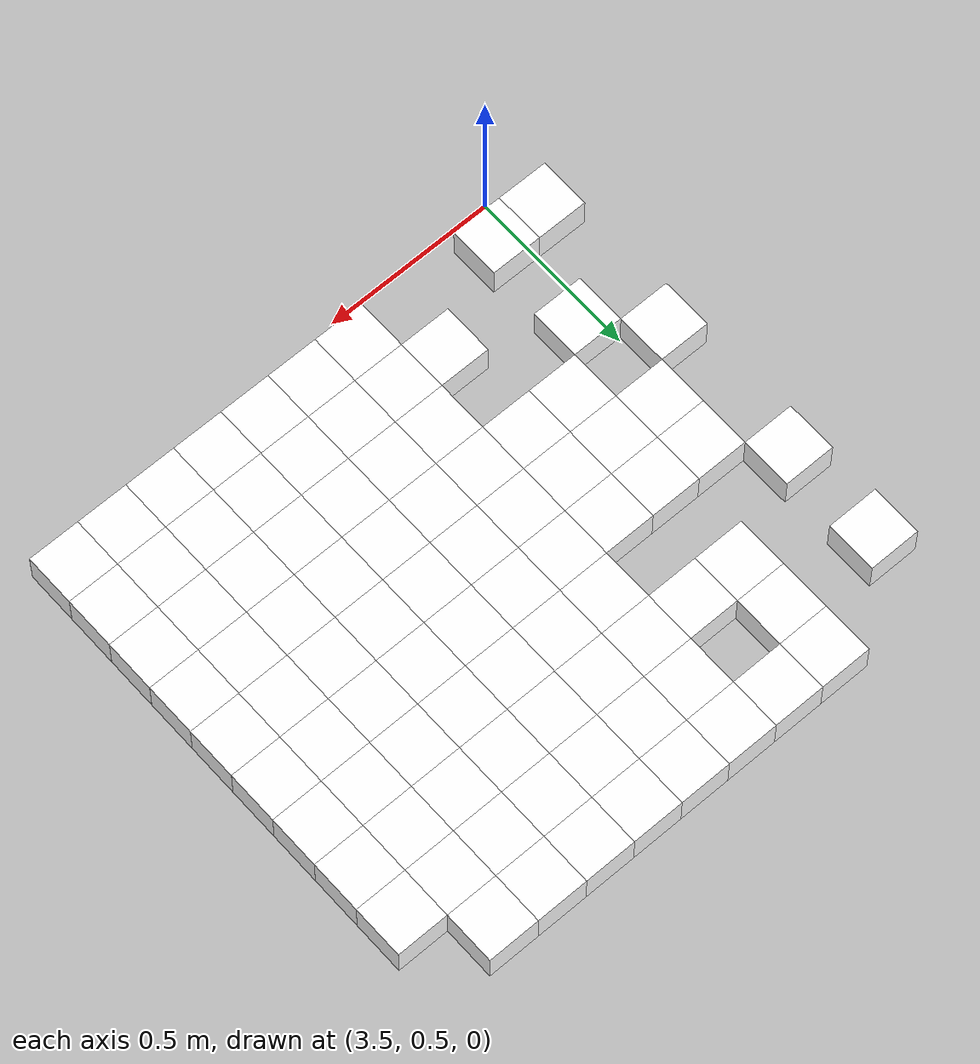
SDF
<sdf version="1.7">
 <world name="default">
  <include><uri>model://sun</uri></include>
  <model name="static_environment">
   <static>true</static>
   <link name="region_407">
    <pose>3.400000000000003 0.6 0.0 0.0 0.0 0.0</pose>
    <collision name="region_407_collision">
     <geometry><box><size>0.15 0.15 0.1</size></box></geometry>
     <surface><friction><ode><mu>1.0</mu><mu2>1.0</mu2></ode></friction></surface>
    </collision>
    <visual name="region_407_visual">
     <geometry><box><size>0.15 0.15 0.1</size></box></geometry>
     <material><ambient>1.0 1.0 1.0 1.0</ambient><diffuse>1.0 1.0 1.0 1.0</diffuse></material>
    </visual>
   </link>
   <link name="region_408">
    <pose>3.5500000000000034 0.6 0.0 0.0 0.0 0.0</pose>
    <collision name="region_408_collision">
     <geometry><box><size>0.15 0.15 0.1</size></box></geometry>
     <surface><friction><ode><mu>1.0</mu><mu2>1.0</mu2></ode></friction></surface>
    </collision>
    <visual name="region_408_visual">
     <geometry><box><size>0.15 0.15 0.1</size></box></geometry>
     <material><ambient>1.0 1.0 1.0 1.0</ambient><diffuse>1.0 1.0 1.0 1.0</diffuse></material>
    </visual>
   </link>
   <link name="region_414">
    <pose>3.850000000000004 0.75 0.0 0.0 0.0 0.0</pose>
    <collision name="region_414_collision">
     <geometry><box><size>0.15 0.15 0.1</size></box></geometry>
     <surface><friction><ode><mu>1.0</mu><mu2>1.0</mu2></ode></friction></surface>
    </collision>
    <visual name="region_414_visual">
     <geometry><box><size>0.15 0.15 0.1</size></box></geometry>
     <material><ambient>1.0 1.0 1.0 1.0</ambient><diffuse>1.0 1.0 1.0 1.0</diffuse></material>
    </visual>
   </link>
   <link name="region_421">
    <pose>3.5500000000000034 0.8999999999999999 0.0 0.0 0.0 0.0</pose>
    <collision name="region_421_collision">
     <geometry><box><size>0.15 0.15 0.1</size></box></geometry>
     <surface><friction><ode><mu>1.0</mu><mu2>1.0</mu2></ode></friction></surface>
    </collision>
    <visual name="region_421_visual">
     <geometry><box><size>0.15 0.15 0.1</size></box></geometry>
     <material><ambient>1.0 1.0 1.0 1.0</ambient><diffuse>1.0 1.0 1.0 1.0</diffuse></material>
    </visual>
   </link>
   <link name="region_426">
    <pose>3.400000000000003 1.0499999999999998 0.0 0.0 0.0 0.0</pose>
    <collision name="region_426_collision">
     <geometry><box><size>0.15 0.15 0.1</size></box></geometry>
     <surface><friction><ode><mu>1.0</mu><mu2>1.0</mu2></ode></friction></surface>
    </collision>
    <visual name="region_426_visual">
     <geometry><box><size>0.15 0.15 0.1</size></box></geometry>
     <material><ambient>1.0 1.0 1.0 1.0</ambient><diffuse>1.0 1.0 1.0 1.0</diffuse></material>
    </visual>
   </link>
   <link name="region_427">
    <pose>3.7000000000000037 1.0499999999999998 0.0 0.0 0.0 0.0</pose>
    <collision name="region_427_collision">
     <geometry><box><size>0.15 0.15 0.1</size></box></geometry>
     <surface><friction><ode><mu>1.0</mu><mu2>1.0</mu2></ode></friction></surface>
    </collision>
    <visual name="region_427_visual">
     <geometry><box><size>0.15 0.15 0.1</size></box></geometry>
     <material><ambient>1.0 1.0 1.0 1.0</ambient><diffuse>1.0 1.0 1.0 1.0</diffuse></material>
    </visual>
   </link>
   <link name="region_428">
    <pose>3.850000000000004 1.0499999999999998 0.0 0.0 0.0 0.0</pose>
    <collision name="region_428_collision">
     <geometry><box><size>0.15 0.15 0.1</size></box></geometry>
     <surface><friction><ode><mu>1.0</mu><mu2>1.0</mu2></ode></friction></surface>
    </collision>
    <visual name="region_428_visual">
     <geometry><box><size>0.15 0.15 0.1</size></box></geometry>
     <material><ambient>1.0 1.0 1.0 1.0</ambient><diffuse>1.0 1.0 1.0 1.0</diffuse></material>
    </visual>
   </link>
   <link name="region_439">
    <pose>3.5500000000000034 1.2 0.0 0.0 0.0 0.0</pose>
    <collision name="region_439_collision">
     <geometry><box><size>0.15 0.15 0.1</size></box></geometry>
     <surface><friction><ode><mu>1.0</mu><mu2>1.0</mu2></ode></friction></surface>
    </collision>
    <visual name="region_439_visual">
     <geometry><box><size>0.15 0.15 0.1</size></box></geometry>
     <material><ambient>1.0 1.0 1.0 1.0</ambient><diffuse>1.0 1.0 1.0 1.0</diffuse></material>
    </visual>
   </link>
   <link name="region_440">
    <pose>3.7000000000000037 1.2 0.0 0.0 0.0 0.0</pose>
    <collision name="region_440_collision">
     <geometry><box><size>0.15 0.15 0.1</size></box></geometry>
     <surface><friction><ode><mu>1.0</mu><mu2>1.0</mu2></ode></friction></surface>
    </collision>
    <visual name="region_440_visual">
     <geometry><box><size>0.15 0.15 0.1</size></box></geometry>
     <material><ambient>1.0 1.0 1.0 1.0</ambient><diffuse>1.0 1.0 1.0 1.0</diffuse></material>
    </visual>
   </link>
   <link name="region_441">
    <pose>3.850000000000004 1.2 0.0 0.0 0.0 0.0</pose>
    <collision name="region_441_collision">
     <geometry><box><size>0.15 0.15 0.1</size></box></geometry>
     <surface><friction><ode><mu>1.0</mu><mu2>1.0</mu2></ode></friction></surface>
    </collision>
    <visual name="region_441_visual">
     <geometry><box><size>0.15 0.15 0.1</size></box></geometry>
     <material><ambient>1.0 1.0 1.0 1.0</ambient><diffuse>1.0 1.0 1.0 1.0</diffuse></material>
    </visual>
   </link>
   <link name="region_447">
    <pose>3.5500000000000034 1.35 0.0 0.0 0.0 0.0</pose>
    <collision name="region_447_collision">
     <geometry><box><size>0.15 0.15 0.1</size></box></geometry>
     <surface><friction><ode><mu>1.0</mu><mu2>1.0</mu2></ode></friction></surface>
    </collision>
    <visual name="region_447_visual">
     <geometry><box><size>0.15 0.15 0.1</size></box></geometry>
     <material><ambient>1.0 1.0 1.0 1.0</ambient><diffuse>1.0 1.0 1.0 1.0</diffuse></material>
    </visual>
   </link>
   <link name="region_448">
    <pose>3.7000000000000037 1.35 0.0 0.0 0.0 0.0</pose>
    <collision name="region_448_collision">
     <geometry><box><size>0.15 0.15 0.1</size></box></geometry>
     <surface><friction><ode><mu>1.0</mu><mu2>1.0</mu2></ode></friction></surface>
    </collision>
    <visual name="region_448_visual">
     <geometry><box><size>0.15 0.15 0.1</size></box></geometry>
     <material><ambient>1.0 1.0 1.0 1.0</ambient><diffuse>1.0 1.0 1.0 1.0</diffuse></material>
    </visual>
   </link>
   <link name="region_449">
    <pose>3.850000000000004 1.35 0.0 0.0 0.0 0.0</pose>
    <collision name="region_449_collision">
     <geometry><box><size>0.15 0.15 0.1</size></box></geometry>
     <surface><friction><ode><mu>1.0</mu><mu2>1.0</mu2></ode></friction></surface>
    </collision>
    <visual name="region_449_visual">
     <geometry><box><size>0.15 0.15 0.1</size></box></geometry>
     <material><ambient>1.0 1.0 1.0 1.0</ambient><diffuse>1.0 1.0 1.0 1.0</diffuse></material>
    </visual>
   </link>
   <link name="region_459">
    <pose>3.400000000000003 1.5 0.0 0.0 0.0 0.0</pose>
    <collision name="region_459_collision">
     <geometry><box><size>0.15 0.15 0.1</size></box></geometry>
     <surface><friction><ode><mu>1.0</mu><mu2>1.0</mu2></ode></friction></surface>
    </collision>
    <visual name="region_459_visual">
     <geometry><box><size>0.15 0.15 0.1</size></box></geometry>
     <material><ambient>1.0 1.0 1.0 1.0</ambient><diffuse>1.0 1.0 1.0 1.0</diffuse></material>
    </visual>
   </link>
   <link name="region_467">
    <pose>3.7000000000000037 1.65 0.0 0.0 0.0 0.0</pose>
    <collision name="region_467_collision">
     <geometry><box><size>0.15 0.15 0.1</size></box></geometry>
     <surface><friction><ode><mu>1.0</mu><mu2>1.0</mu2></ode></friction></surface>
    </collision>
    <visual name="region_467_visual">
     <geometry><box><size>0.15 0.15 0.1</size></box></geometry>
     <material><ambient>1.0 1.0 1.0 1.0</ambient><diffuse>1.0 1.0 1.0 1.0</diffuse></material>
    </visual>
   </link>
   <link name="region_468">
    <pose>3.850000000000004 1.65 0.0 0.0 0.0 0.0</pose>
    <collision name="region_468_collision">
     <geometry><box><size>0.15 0.15 0.1</size></box></geometry>
     <surface><friction><ode><mu>1.0</mu><mu2>1.0</mu2></ode></friction></surface>
    </collision>
    <visual name="region_468_visual">
     <geometry><box><size>0.15 0.15 0.1</size></box></geometry>
     <material><ambient>1.0 1.0 1.0 1.0</ambient><diffuse>1.0 1.0 1.0 1.0</diffuse></material>
    </visual>
   </link>
   <link name="region_476">
    <pose>3.400000000000003 1.7999999999999998 0.0 0.0 0.0 0.0</pose>
    <collision name="region_476_collision">
     <geometry><box><size>0.15 0.15 0.1</size></box></geometry>
     <surface><friction><ode><mu>1.0</mu><mu2>1.0</mu2></ode></friction></surface>
    </collision>
    <visual name="region_476_visual">
     <geometry><box><size>0.15 0.15 0.1</size></box></geometry>
     <material><ambient>1.0 1.0 1.0 1.0</ambient><diffuse>1.0 1.0 1.0 1.0</diffuse></material>
    </visual>
   </link>
   <link name="region_477">
    <pose>3.7000000000000037 1.7999999999999998 0.0 0.0 0.0 0.0</pose>
    <collision name="region_477_collision">
     <geometry><box><size>0.15 0.15 0.1</size></box></geometry>
     <surface><friction><ode><mu>1.0</mu><mu2>1.0</mu2></ode></friction></surface>
    </collision>
    <visual name="region_477_visual">
     <geometry><box><size>0.15 0.15 0.1</size></box></geometry>
     <material><ambient>1.0 1.0 1.0 1.0</ambient><diffuse>1.0 1.0 1.0 1.0</diffuse></material>
    </visual>
   </link>
   <link name="region_483">
    <pose>3.7000000000000037 1.9499999999999997 0.0 0.0 0.0 0.0</pose>
    <collision name="region_483_collision">
     <geometry><box><size>0.15 0.15 0.1</size></box></geometry>
     <surface><friction><ode><mu>1.0</mu><mu2>1.0</mu2></ode></friction></surface>
    </collision>
    <visual name="region_483_visual">
     <geometry><box><size>0.15 0.15 0.1</size></box></geometry>
     <material><ambient>1.0 1.0 1.0 1.0</ambient><diffuse>1.0 1.0 1.0 1.0</diffuse></material>
    </visual>
   </link>
   <link name="region_484">
    <pose>3.850000000000004 1.9499999999999997 0.0 0.0 0.0 0.0</pose>
    <collision name="region_484_collision">
     <geometry><box><size>0.15 0.15 0.1</size></box></geometry>
     <surface><friction><ode><mu>1.0</mu><mu2>1.0</mu2></ode></friction></surface>
    </collision>
    <visual name="region_484_visual">
     <geometry><box><size>0.15 0.15 0.1</size></box></geometry>
     <material><ambient>1.0 1.0 1.0 1.0</ambient><diffuse>1.0 1.0 1.0 1.0</diffuse></material>
    </visual>
   </link>
   <link name="region_564">
    <pose>4.0 0.6 0.0 0.0 0.0 0.0</pose>
    <collision name="region_564_collision">
     <geometry><box><size>0.15 0.15 0.1</size></box></geometry>
     <surface><friction><ode><mu>1.0</mu><mu2>1.0</mu2></ode></friction></surface>
    </collision>
    <visual name="region_564_visual">
     <geometry><box><size>0.15 0.15 0.1</size></box></geometry>
     <material><ambient>1.0 1.0 1.0 1.0</ambient><diffuse>1.0 1.0 1.0 1.0</diffuse></material>
    </visual>
   </link>
   <link name="region_565">
    <pose>4.15 0.6 0.0 0.0 0.0 0.0</pose>
    <collision name="region_565_collision">
     <geometry><box><size>0.15 0.15 0.1</size></box></geometry>
     <surface><friction><ode><mu>1.0</mu><mu2>1.0</mu2></ode></friction></surface>
    </collision>
    <visual name="region_565_visual">
     <geometry><box><size>0.15 0.15 0.1</size></box></geometry>
     <material><ambient>1.0 1.0 1.0 1.0</ambient><diffuse>1.0 1.0 1.0 1.0</diffuse></material>
    </visual>
   </link>
   <link name="region_566">
    <pose>4.300000000000001 0.6 0.0 0.0 0.0 0.0</pose>
    <collision name="region_566_collision">
     <geometry><box><size>0.15 0.15 0.1</size></box></geometry>
     <surface><friction><ode><mu>1.0</mu><mu2>1.0</mu2></ode></friction></surface>
    </collision>
    <visual name="region_566_visual">
     <geometry><box><size>0.15 0.15 0.1</size></box></geometry>
     <material><ambient>1.0 1.0 1.0 1.0</ambient><diffuse>1.0 1.0 1.0 1.0</diffuse></material>
    </visual>
   </link>
   <link name="region_567">
    <pose>4.450000000000001 0.6 0.0 0.0 0.0 0.0</pose>
    <collision name="region_567_collision">
     <geometry><box><size>0.15 0.15 0.1</size></box></geometry>
     <surface><friction><ode><mu>1.0</mu><mu2>1.0</mu2></ode></friction></surface>
    </collision>
    <visual name="region_567_visual">
     <geometry><box><size>0.15 0.15 0.1</size></box></geometry>
     <material><ambient>1.0 1.0 1.0 1.0</ambient><diffuse>1.0 1.0 1.0 1.0</diffuse></material>
    </visual>
   </link>
   <link name="region_568">
    <pose>4.600000000000001 0.6 0.0 0.0 0.0 0.0</pose>
    <collision name="region_568_collision">
     <geometry><box><size>0.15 0.15 0.1</size></box></geometry>
     <surface><friction><ode><mu>1.0</mu><mu2>1.0</mu2></ode></friction></surface>
    </collision>
    <visual name="region_568_visual">
     <geometry><box><size>0.15 0.15 0.1</size></box></geometry>
     <material><ambient>1.0 1.0 1.0 1.0</ambient><diffuse>1.0 1.0 1.0 1.0</diffuse></material>
    </visual>
   </link>
   <link name="region_569">
    <pose>4.750000000000002 0.6 0.0 0.0 0.0 0.0</pose>
    <collision name="region_569_collision">
     <geometry><box><size>0.15 0.15 0.1</size></box></geometry>
     <surface><friction><ode><mu>1.0</mu><mu2>1.0</mu2></ode></friction></surface>
    </collision>
    <visual name="region_569_visual">
     <geometry><box><size>0.15 0.15 0.1</size></box></geometry>
     <material><ambient>1.0 1.0 1.0 1.0</ambient><diffuse>1.0 1.0 1.0 1.0</diffuse></material>
    </visual>
   </link>
   <link name="region_570">
    <pose>4.900000000000002 0.6 0.0 0.0 0.0 0.0</pose>
    <collision name="region_570_collision">
     <geometry><box><size>0.15 0.15 0.1</size></box></geometry>
     <surface><friction><ode><mu>1.0</mu><mu2>1.0</mu2></ode></friction></surface>
    </collision>
    <visual name="region_570_visual">
     <geometry><box><size>0.15 0.15 0.1</size></box></geometry>
     <material><ambient>1.0 1.0 1.0 1.0</ambient><diffuse>1.0 1.0 1.0 1.0</diffuse></material>
    </visual>
   </link>
   <link name="region_584">
    <pose>4.0 0.75 0.0 0.0 0.0 0.0</pose>
    <collision name="region_584_collision">
     <geometry><box><size>0.15 0.15 0.1</size></box></geometry>
     <surface><friction><ode><mu>1.0</mu><mu2>1.0</mu2></ode></friction></surface>
    </collision>
    <visual name="region_584_visual">
     <geometry><box><size>0.15 0.15 0.1</size></box></geometry>
     <material><ambient>1.0 1.0 1.0 1.0</ambient><diffuse>1.0 1.0 1.0 1.0</diffuse></material>
    </visual>
   </link>
   <link name="region_585">
    <pose>4.15 0.75 0.0 0.0 0.0 0.0</pose>
    <collision name="region_585_collision">
     <geometry><box><size>0.15 0.15 0.1</size></box></geometry>
     <surface><friction><ode><mu>1.0</mu><mu2>1.0</mu2></ode></friction></surface>
    </collision>
    <visual name="region_585_visual">
     <geometry><box><size>0.15 0.15 0.1</size></box></geometry>
     <material><ambient>1.0 1.0 1.0 1.0</ambient><diffuse>1.0 1.0 1.0 1.0</diffuse></material>
    </visual>
   </link>
   <link name="region_586">
    <pose>4.300000000000001 0.75 0.0 0.0 0.0 0.0</pose>
    <collision name="region_586_collision">
     <geometry><box><size>0.15 0.15 0.1</size></box></geometry>
     <surface><friction><ode><mu>1.0</mu><mu2>1.0</mu2></ode></friction></surface>
    </collision>
    <visual name="region_586_visual">
     <geometry><box><size>0.15 0.15 0.1</size></box></geometry>
     <material><ambient>1.0 1.0 1.0 1.0</ambient><diffuse>1.0 1.0 1.0 1.0</diffuse></material>
    </visual>
   </link>
   <link name="region_587">
    <pose>4.450000000000001 0.75 0.0 0.0 0.0 0.0</pose>
    <collision name="region_587_collision">
     <geometry><box><size>0.15 0.15 0.1</size></box></geometry>
     <surface><friction><ode><mu>1.0</mu><mu2>1.0</mu2></ode></friction></surface>
    </collision>
    <visual name="region_587_visual">
     <geometry><box><size>0.15 0.15 0.1</size></box></geometry>
     <material><ambient>1.0 1.0 1.0 1.0</ambient><diffuse>1.0 1.0 1.0 1.0</diffuse></material>
    </visual>
   </link>
   <link name="region_588">
    <pose>4.600000000000001 0.75 0.0 0.0 0.0 0.0</pose>
    <collision name="region_588_collision">
     <geometry><box><size>0.15 0.15 0.1</size></box></geometry>
     <surface><friction><ode><mu>1.0</mu><mu2>1.0</mu2></ode></friction></surface>
    </collision>
    <visual name="region_588_visual">
     <geometry><box><size>0.15 0.15 0.1</size></box></geometry>
     <material><ambient>1.0 1.0 1.0 1.0</ambient><diffuse>1.0 1.0 1.0 1.0</diffuse></material>
    </visual>
   </link>
   <link name="region_589">
    <pose>4.750000000000002 0.75 0.0 0.0 0.0 0.0</pose>
    <collision name="region_589_collision">
     <geometry><box><size>0.15 0.15 0.1</size></box></geometry>
     <surface><friction><ode><mu>1.0</mu><mu2>1.0</mu2></ode></friction></surface>
    </collision>
    <visual name="region_589_visual">
     <geometry><box><size>0.15 0.15 0.1</size></box></geometry>
     <material><ambient>1.0 1.0 1.0 1.0</ambient><diffuse>1.0 1.0 1.0 1.0</diffuse></material>
    </visual>
   </link>
   <link name="region_590">
    <pose>4.900000000000002 0.75 0.0 0.0 0.0 0.0</pose>
    <collision name="region_590_collision">
     <geometry><box><size>0.15 0.15 0.1</size></box></geometry>
     <surface><friction><ode><mu>1.0</mu><mu2>1.0</mu2></ode></friction></surface>
    </collision>
    <visual name="region_590_visual">
     <geometry><box><size>0.15 0.15 0.1</size></box></geometry>
     <material><ambient>1.0 1.0 1.0 1.0</ambient><diffuse>1.0 1.0 1.0 1.0</diffuse></material>
    </visual>
   </link>
   <link name="region_604">
    <pose>4.0 0.8999999999999999 0.0 0.0 0.0 0.0</pose>
    <collision name="region_604_collision">
     <geometry><box><size>0.15 0.15 0.1</size></box></geometry>
     <surface><friction><ode><mu>1.0</mu><mu2>1.0</mu2></ode></friction></surface>
    </collision>
    <visual name="region_604_visual">
     <geometry><box><size>0.15 0.15 0.1</size></box></geometry>
     <material><ambient>1.0 1.0 1.0 1.0</ambient><diffuse>1.0 1.0 1.0 1.0</diffuse></material>
    </visual>
   </link>
   <link name="region_605">
    <pose>4.15 0.8999999999999999 0.0 0.0 0.0 0.0</pose>
    <collision name="region_605_collision">
     <geometry><box><size>0.15 0.15 0.1</size></box></geometry>
     <surface><friction><ode><mu>1.0</mu><mu2>1.0</mu2></ode></friction></surface>
    </collision>
    <visual name="region_605_visual">
     <geometry><box><size>0.15 0.15 0.1</size></box></geometry>
     <material><ambient>1.0 1.0 1.0 1.0</ambient><diffuse>1.0 1.0 1.0 1.0</diffuse></material>
    </visual>
   </link>
   <link name="region_606">
    <pose>4.300000000000001 0.8999999999999999 0.0 0.0 0.0 0.0</pose>
    <collision name="region_606_collision">
     <geometry><box><size>0.15 0.15 0.1</size></box></geometry>
     <surface><friction><ode><mu>1.0</mu><mu2>1.0</mu2></ode></friction></surface>
    </collision>
    <visual name="region_606_visual">
     <geometry><box><size>0.15 0.15 0.1</size></box></geometry>
     <material><ambient>1.0 1.0 1.0 1.0</ambient><diffuse>1.0 1.0 1.0 1.0</diffuse></material>
    </visual>
   </link>
   <link name="region_607">
    <pose>4.450000000000001 0.8999999999999999 0.0 0.0 0.0 0.0</pose>
    <collision name="region_607_collision">
     <geometry><box><size>0.15 0.15 0.1</size></box></geometry>
     <surface><friction><ode><mu>1.0</mu><mu2>1.0</mu2></ode></friction></surface>
    </collision>
    <visual name="region_607_visual">
     <geometry><box><size>0.15 0.15 0.1</size></box></geometry>
     <material><ambient>1.0 1.0 1.0 1.0</ambient><diffuse>1.0 1.0 1.0 1.0</diffuse></material>
    </visual>
   </link>
   <link name="region_608">
    <pose>4.600000000000001 0.8999999999999999 0.0 0.0 0.0 0.0</pose>
    <collision name="region_608_collision">
     <geometry><box><size>0.15 0.15 0.1</size></box></geometry>
     <surface><friction><ode><mu>1.0</mu><mu2>1.0</mu2></ode></friction></surface>
    </collision>
    <visual name="region_608_visual">
     <geometry><box><size>0.15 0.15 0.1</size></box></geometry>
     <material><ambient>1.0 1.0 1.0 1.0</ambient><diffuse>1.0 1.0 1.0 1.0</diffuse></material>
    </visual>
   </link>
   <link name="region_609">
    <pose>4.750000000000002 0.8999999999999999 0.0 0.0 0.0 0.0</pose>
    <collision name="region_609_collision">
     <geometry><box><size>0.15 0.15 0.1</size></box></geometry>
     <surface><friction><ode><mu>1.0</mu><mu2>1.0</mu2></ode></friction></surface>
    </collision>
    <visual name="region_609_visual">
     <geometry><box><size>0.15 0.15 0.1</size></box></geometry>
     <material><ambient>1.0 1.0 1.0 1.0</ambient><diffuse>1.0 1.0 1.0 1.0</diffuse></material>
    </visual>
   </link>
   <link name="region_610">
    <pose>4.900000000000002 0.8999999999999999 0.0 0.0 0.0 0.0</pose>
    <collision name="region_610_collision">
     <geometry><box><size>0.15 0.15 0.1</size></box></geometry>
     <surface><friction><ode><mu>1.0</mu><mu2>1.0</mu2></ode></friction></surface>
    </collision>
    <visual name="region_610_visual">
     <geometry><box><size>0.15 0.15 0.1</size></box></geometry>
     <material><ambient>1.0 1.0 1.0 1.0</ambient><diffuse>1.0 1.0 1.0 1.0</diffuse></material>
    </visual>
   </link>
   <link name="region_624">
    <pose>4.0 1.0499999999999998 0.0 0.0 0.0 0.0</pose>
    <collision name="region_624_collision">
     <geometry><box><size>0.15 0.15 0.1</size></box></geometry>
     <surface><friction><ode><mu>1.0</mu><mu2>1.0</mu2></ode></friction></surface>
    </collision>
    <visual name="region_624_visual">
     <geometry><box><size>0.15 0.15 0.1</size></box></geometry>
     <material><ambient>1.0 1.0 1.0 1.0</ambient><diffuse>1.0 1.0 1.0 1.0</diffuse></material>
    </visual>
   </link>
   <link name="region_625">
    <pose>4.15 1.0499999999999998 0.0 0.0 0.0 0.0</pose>
    <collision name="region_625_collision">
     <geometry><box><size>0.15 0.15 0.1</size></box></geometry>
     <surface><friction><ode><mu>1.0</mu><mu2>1.0</mu2></ode></friction></surface>
    </collision>
    <visual name="region_625_visual">
     <geometry><box><size>0.15 0.15 0.1</size></box></geometry>
     <material><ambient>1.0 1.0 1.0 1.0</ambient><diffuse>1.0 1.0 1.0 1.0</diffuse></material>
    </visual>
   </link>
   <link name="region_626">
    <pose>4.300000000000001 1.0499999999999998 0.0 0.0 0.0 0.0</pose>
    <collision name="region_626_collision">
     <geometry><box><size>0.15 0.15 0.1</size></box></geometry>
     <surface><friction><ode><mu>1.0</mu><mu2>1.0</mu2></ode></friction></surface>
    </collision>
    <visual name="region_626_visual">
     <geometry><box><size>0.15 0.15 0.1</size></box></geometry>
     <material><ambient>1.0 1.0 1.0 1.0</ambient><diffuse>1.0 1.0 1.0 1.0</diffuse></material>
    </visual>
   </link>
   <link name="region_627">
    <pose>4.450000000000001 1.0499999999999998 0.0 0.0 0.0 0.0</pose>
    <collision name="region_627_collision">
     <geometry><box><size>0.15 0.15 0.1</size></box></geometry>
     <surface><friction><ode><mu>1.0</mu><mu2>1.0</mu2></ode></friction></surface>
    </collision>
    <visual name="region_627_visual">
     <geometry><box><size>0.15 0.15 0.1</size></box></geometry>
     <material><ambient>1.0 1.0 1.0 1.0</ambient><diffuse>1.0 1.0 1.0 1.0</diffuse></material>
    </visual>
   </link>
   <link name="region_628">
    <pose>4.600000000000001 1.0499999999999998 0.0 0.0 0.0 0.0</pose>
    <collision name="region_628_collision">
     <geometry><box><size>0.15 0.15 0.1</size></box></geometry>
     <surface><friction><ode><mu>1.0</mu><mu2>1.0</mu2></ode></friction></surface>
    </collision>
    <visual name="region_628_visual">
     <geometry><box><size>0.15 0.15 0.1</size></box></geometry>
     <material><ambient>1.0 1.0 1.0 1.0</ambient><diffuse>1.0 1.0 1.0 1.0</diffuse></material>
    </visual>
   </link>
   <link name="region_629">
    <pose>4.750000000000002 1.0499999999999998 0.0 0.0 0.0 0.0</pose>
    <collision name="region_629_collision">
     <geometry><box><size>0.15 0.15 0.1</size></box></geometry>
     <surface><friction><ode><mu>1.0</mu><mu2>1.0</mu2></ode></friction></surface>
    </collision>
    <visual name="region_629_visual">
     <geometry><box><size>0.15 0.15 0.1</size></box></geometry>
     <material><ambient>1.0 1.0 1.0 1.0</ambient><diffuse>1.0 1.0 1.0 1.0</diffuse></material>
    </visual>
   </link>
   <link name="region_630">
    <pose>4.900000000000002 1.0499999999999998 0.0 0.0 0.0 0.0</pose>
    <collision name="region_630_collision">
     <geometry><box><size>0.15 0.15 0.1</size></box></geometry>
     <surface><friction><ode><mu>1.0</mu><mu2>1.0</mu2></ode></friction></surface>
    </collision>
    <visual name="region_630_visual">
     <geometry><box><size>0.15 0.15 0.1</size></box></geometry>
     <material><ambient>1.0 1.0 1.0 1.0</ambient><diffuse>1.0 1.0 1.0 1.0</diffuse></material>
    </visual>
   </link>
   <link name="region_644">
    <pose>4.0 1.2 0.0 0.0 0.0 0.0</pose>
    <collision name="region_644_collision">
     <geometry><box><size>0.15 0.15 0.1</size></box></geometry>
     <surface><friction><ode><mu>1.0</mu><mu2>1.0</mu2></ode></friction></surface>
    </collision>
    <visual name="region_644_visual">
     <geometry><box><size>0.15 0.15 0.1</size></box></geometry>
     <material><ambient>1.0 1.0 1.0 1.0</ambient><diffuse>1.0 1.0 1.0 1.0</diffuse></material>
    </visual>
   </link>
   <link name="region_645">
    <pose>4.15 1.2 0.0 0.0 0.0 0.0</pose>
    <collision name="region_645_collision">
     <geometry><box><size>0.15 0.15 0.1</size></box></geometry>
     <surface><friction><ode><mu>1.0</mu><mu2>1.0</mu2></ode></friction></surface>
    </collision>
    <visual name="region_645_visual">
     <geometry><box><size>0.15 0.15 0.1</size></box></geometry>
     <material><ambient>1.0 1.0 1.0 1.0</ambient><diffuse>1.0 1.0 1.0 1.0</diffuse></material>
    </visual>
   </link>
   <link name="region_646">
    <pose>4.300000000000001 1.2 0.0 0.0 0.0 0.0</pose>
    <collision name="region_646_collision">
     <geometry><box><size>0.15 0.15 0.1</size></box></geometry>
     <surface><friction><ode><mu>1.0</mu><mu2>1.0</mu2></ode></friction></surface>
    </collision>
    <visual name="region_646_visual">
     <geometry><box><size>0.15 0.15 0.1</size></box></geometry>
     <material><ambient>1.0 1.0 1.0 1.0</ambient><diffuse>1.0 1.0 1.0 1.0</diffuse></material>
    </visual>
   </link>
   <link name="region_647">
    <pose>4.450000000000001 1.2 0.0 0.0 0.0 0.0</pose>
    <collision name="region_647_collision">
     <geometry><box><size>0.15 0.15 0.1</size></box></geometry>
     <surface><friction><ode><mu>1.0</mu><mu2>1.0</mu2></ode></friction></surface>
    </collision>
    <visual name="region_647_visual">
     <geometry><box><size>0.15 0.15 0.1</size></box></geometry>
     <material><ambient>1.0 1.0 1.0 1.0</ambient><diffuse>1.0 1.0 1.0 1.0</diffuse></material>
    </visual>
   </link>
   <link name="region_648">
    <pose>4.600000000000001 1.2 0.0 0.0 0.0 0.0</pose>
    <collision name="region_648_collision">
     <geometry><box><size>0.15 0.15 0.1</size></box></geometry>
     <surface><friction><ode><mu>1.0</mu><mu2>1.0</mu2></ode></friction></surface>
    </collision>
    <visual name="region_648_visual">
     <geometry><box><size>0.15 0.15 0.1</size></box></geometry>
     <material><ambient>1.0 1.0 1.0 1.0</ambient><diffuse>1.0 1.0 1.0 1.0</diffuse></material>
    </visual>
   </link>
   <link name="region_649">
    <pose>4.750000000000002 1.2 0.0 0.0 0.0 0.0</pose>
    <collision name="region_649_collision">
     <geometry><box><size>0.15 0.15 0.1</size></box></geometry>
     <surface><friction><ode><mu>1.0</mu><mu2>1.0</mu2></ode></friction></surface>
    </collision>
    <visual name="region_649_visual">
     <geometry><box><size>0.15 0.15 0.1</size></box></geometry>
     <material><ambient>1.0 1.0 1.0 1.0</ambient><diffuse>1.0 1.0 1.0 1.0</diffuse></material>
    </visual>
   </link>
   <link name="region_650">
    <pose>4.900000000000002 1.2 0.0 0.0 0.0 0.0</pose>
    <collision name="region_650_collision">
     <geometry><box><size>0.15 0.15 0.1</size></box></geometry>
     <surface><friction><ode><mu>1.0</mu><mu2>1.0</mu2></ode></friction></surface>
    </collision>
    <visual name="region_650_visual">
     <geometry><box><size>0.15 0.15 0.1</size></box></geometry>
     <material><ambient>1.0 1.0 1.0 1.0</ambient><diffuse>1.0 1.0 1.0 1.0</diffuse></material>
    </visual>
   </link>
   <link name="region_664">
    <pose>4.0 1.35 0.0 0.0 0.0 0.0</pose>
    <collision name="region_664_collision">
     <geometry><box><size>0.15 0.15 0.1</size></box></geometry>
     <surface><friction><ode><mu>1.0</mu><mu2>1.0</mu2></ode></friction></surface>
    </collision>
    <visual name="region_664_visual">
     <geometry><box><size>0.15 0.15 0.1</size></box></geometry>
     <material><ambient>1.0 1.0 1.0 1.0</ambient><diffuse>1.0 1.0 1.0 1.0</diffuse></material>
    </visual>
   </link>
   <link name="region_665">
    <pose>4.15 1.35 0.0 0.0 0.0 0.0</pose>
    <collision name="region_665_collision">
     <geometry><box><size>0.15 0.15 0.1</size></box></geometry>
     <surface><friction><ode><mu>1.0</mu><mu2>1.0</mu2></ode></friction></surface>
    </collision>
    <visual name="region_665_visual">
     <geometry><box><size>0.15 0.15 0.1</size></box></geometry>
     <material><ambient>1.0 1.0 1.0 1.0</ambient><diffuse>1.0 1.0 1.0 1.0</diffuse></material>
    </visual>
   </link>
   <link name="region_666">
    <pose>4.300000000000001 1.35 0.0 0.0 0.0 0.0</pose>
    <collision name="region_666_collision">
     <geometry><box><size>0.15 0.15 0.1</size></box></geometry>
     <surface><friction><ode><mu>1.0</mu><mu2>1.0</mu2></ode></friction></surface>
    </collision>
    <visual name="region_666_visual">
     <geometry><box><size>0.15 0.15 0.1</size></box></geometry>
     <material><ambient>1.0 1.0 1.0 1.0</ambient><diffuse>1.0 1.0 1.0 1.0</diffuse></material>
    </visual>
   </link>
   <link name="region_667">
    <pose>4.450000000000001 1.35 0.0 0.0 0.0 0.0</pose>
    <collision name="region_667_collision">
     <geometry><box><size>0.15 0.15 0.1</size></box></geometry>
     <surface><friction><ode><mu>1.0</mu><mu2>1.0</mu2></ode></friction></surface>
    </collision>
    <visual name="region_667_visual">
     <geometry><box><size>0.15 0.15 0.1</size></box></geometry>
     <material><ambient>1.0 1.0 1.0 1.0</ambient><diffuse>1.0 1.0 1.0 1.0</diffuse></material>
    </visual>
   </link>
   <link name="region_668">
    <pose>4.600000000000001 1.35 0.0 0.0 0.0 0.0</pose>
    <collision name="region_668_collision">
     <geometry><box><size>0.15 0.15 0.1</size></box></geometry>
     <surface><friction><ode><mu>1.0</mu><mu2>1.0</mu2></ode></friction></surface>
    </collision>
    <visual name="region_668_visual">
     <geometry><box><size>0.15 0.15 0.1</size></box></geometry>
     <material><ambient>1.0 1.0 1.0 1.0</ambient><diffuse>1.0 1.0 1.0 1.0</diffuse></material>
    </visual>
   </link>
   <link name="region_669">
    <pose>4.750000000000002 1.35 0.0 0.0 0.0 0.0</pose>
    <collision name="region_669_collision">
     <geometry><box><size>0.15 0.15 0.1</size></box></geometry>
     <surface><friction><ode><mu>1.0</mu><mu2>1.0</mu2></ode></friction></surface>
    </collision>
    <visual name="region_669_visual">
     <geometry><box><size>0.15 0.15 0.1</size></box></geometry>
     <material><ambient>1.0 1.0 1.0 1.0</ambient><diffuse>1.0 1.0 1.0 1.0</diffuse></material>
    </visual>
   </link>
   <link name="region_670">
    <pose>4.900000000000002 1.35 0.0 0.0 0.0 0.0</pose>
    <collision name="region_670_collision">
     <geometry><box><size>0.15 0.15 0.1</size></box></geometry>
     <surface><friction><ode><mu>1.0</mu><mu2>1.0</mu2></ode></friction></surface>
    </collision>
    <visual name="region_670_visual">
     <geometry><box><size>0.15 0.15 0.1</size></box></geometry>
     <material><ambient>1.0 1.0 1.0 1.0</ambient><diffuse>1.0 1.0 1.0 1.0</diffuse></material>
    </visual>
   </link>
   <link name="region_684">
    <pose>4.0 1.5 0.0 0.0 0.0 0.0</pose>
    <collision name="region_684_collision">
     <geometry><box><size>0.15 0.15 0.1</size></box></geometry>
     <surface><friction><ode><mu>1.0</mu><mu2>1.0</mu2></ode></friction></surface>
    </collision>
    <visual name="region_684_visual">
     <geometry><box><size>0.15 0.15 0.1</size></box></geometry>
     <material><ambient>1.0 1.0 1.0 1.0</ambient><diffuse>1.0 1.0 1.0 1.0</diffuse></material>
    </visual>
   </link>
   <link name="region_685">
    <pose>4.15 1.5 0.0 0.0 0.0 0.0</pose>
    <collision name="region_685_collision">
     <geometry><box><size>0.15 0.15 0.1</size></box></geometry>
     <surface><friction><ode><mu>1.0</mu><mu2>1.0</mu2></ode></friction></surface>
    </collision>
    <visual name="region_685_visual">
     <geometry><box><size>0.15 0.15 0.1</size></box></geometry>
     <material><ambient>1.0 1.0 1.0 1.0</ambient><diffuse>1.0 1.0 1.0 1.0</diffuse></material>
    </visual>
   </link>
   <link name="region_686">
    <pose>4.300000000000001 1.5 0.0 0.0 0.0 0.0</pose>
    <collision name="region_686_collision">
     <geometry><box><size>0.15 0.15 0.1</size></box></geometry>
     <surface><friction><ode><mu>1.0</mu><mu2>1.0</mu2></ode></friction></surface>
    </collision>
    <visual name="region_686_visual">
     <geometry><box><size>0.15 0.15 0.1</size></box></geometry>
     <material><ambient>1.0 1.0 1.0 1.0</ambient><diffuse>1.0 1.0 1.0 1.0</diffuse></material>
    </visual>
   </link>
   <link name="region_687">
    <pose>4.450000000000001 1.5 0.0 0.0 0.0 0.0</pose>
    <collision name="region_687_collision">
     <geometry><box><size>0.15 0.15 0.1</size></box></geometry>
     <surface><friction><ode><mu>1.0</mu><mu2>1.0</mu2></ode></friction></surface>
    </collision>
    <visual name="region_687_visual">
     <geometry><box><size>0.15 0.15 0.1</size></box></geometry>
     <material><ambient>1.0 1.0 1.0 1.0</ambient><diffuse>1.0 1.0 1.0 1.0</diffuse></material>
    </visual>
   </link>
   <link name="region_688">
    <pose>4.600000000000001 1.5 0.0 0.0 0.0 0.0</pose>
    <collision name="region_688_collision">
     <geometry><box><size>0.15 0.15 0.1</size></box></geometry>
     <surface><friction><ode><mu>1.0</mu><mu2>1.0</mu2></ode></friction></surface>
    </collision>
    <visual name="region_688_visual">
     <geometry><box><size>0.15 0.15 0.1</size></box></geometry>
     <material><ambient>1.0 1.0 1.0 1.0</ambient><diffuse>1.0 1.0 1.0 1.0</diffuse></material>
    </visual>
   </link>
   <link name="region_689">
    <pose>4.750000000000002 1.5 0.0 0.0 0.0 0.0</pose>
    <collision name="region_689_collision">
     <geometry><box><size>0.15 0.15 0.1</size></box></geometry>
     <surface><friction><ode><mu>1.0</mu><mu2>1.0</mu2></ode></friction></surface>
    </collision>
    <visual name="region_689_visual">
     <geometry><box><size>0.15 0.15 0.1</size></box></geometry>
     <material><ambient>1.0 1.0 1.0 1.0</ambient><diffuse>1.0 1.0 1.0 1.0</diffuse></material>
    </visual>
   </link>
   <link name="region_690">
    <pose>4.900000000000002 1.5 0.0 0.0 0.0 0.0</pose>
    <collision name="region_690_collision">
     <geometry><box><size>0.15 0.15 0.1</size></box></geometry>
     <surface><friction><ode><mu>1.0</mu><mu2>1.0</mu2></ode></friction></surface>
    </collision>
    <visual name="region_690_visual">
     <geometry><box><size>0.15 0.15 0.1</size></box></geometry>
     <material><ambient>1.0 1.0 1.0 1.0</ambient><diffuse>1.0 1.0 1.0 1.0</diffuse></material>
    </visual>
   </link>
   <link name="region_704">
    <pose>4.0 1.65 0.0 0.0 0.0 0.0</pose>
    <collision name="region_704_collision">
     <geometry><box><size>0.15 0.15 0.1</size></box></geometry>
     <surface><friction><ode><mu>1.0</mu><mu2>1.0</mu2></ode></friction></surface>
    </collision>
    <visual name="region_704_visual">
     <geometry><box><size>0.15 0.15 0.1</size></box></geometry>
     <material><ambient>1.0 1.0 1.0 1.0</ambient><diffuse>1.0 1.0 1.0 1.0</diffuse></material>
    </visual>
   </link>
   <link name="region_705">
    <pose>4.15 1.65 0.0 0.0 0.0 0.0</pose>
    <collision name="region_705_collision">
     <geometry><box><size>0.15 0.15 0.1</size></box></geometry>
     <surface><friction><ode><mu>1.0</mu><mu2>1.0</mu2></ode></friction></surface>
    </collision>
    <visual name="region_705_visual">
     <geometry><box><size>0.15 0.15 0.1</size></box></geometry>
     <material><ambient>1.0 1.0 1.0 1.0</ambient><diffuse>1.0 1.0 1.0 1.0</diffuse></material>
    </visual>
   </link>
   <link name="region_706">
    <pose>4.300000000000001 1.65 0.0 0.0 0.0 0.0</pose>
    <collision name="region_706_collision">
     <geometry><box><size>0.15 0.15 0.1</size></box></geometry>
     <surface><friction><ode><mu>1.0</mu><mu2>1.0</mu2></ode></friction></surface>
    </collision>
    <visual name="region_706_visual">
     <geometry><box><size>0.15 0.15 0.1</size></box></geometry>
     <material><ambient>1.0 1.0 1.0 1.0</ambient><diffuse>1.0 1.0 1.0 1.0</diffuse></material>
    </visual>
   </link>
   <link name="region_707">
    <pose>4.450000000000001 1.65 0.0 0.0 0.0 0.0</pose>
    <collision name="region_707_collision">
     <geometry><box><size>0.15 0.15 0.1</size></box></geometry>
     <surface><friction><ode><mu>1.0</mu><mu2>1.0</mu2></ode></friction></surface>
    </collision>
    <visual name="region_707_visual">
     <geometry><box><size>0.15 0.15 0.1</size></box></geometry>
     <material><ambient>1.0 1.0 1.0 1.0</ambient><diffuse>1.0 1.0 1.0 1.0</diffuse></material>
    </visual>
   </link>
   <link name="region_708">
    <pose>4.600000000000001 1.65 0.0 0.0 0.0 0.0</pose>
    <collision name="region_708_collision">
     <geometry><box><size>0.15 0.15 0.1</size></box></geometry>
     <surface><friction><ode><mu>1.0</mu><mu2>1.0</mu2></ode></friction></surface>
    </collision>
    <visual name="region_708_visual">
     <geometry><box><size>0.15 0.15 0.1</size></box></geometry>
     <material><ambient>1.0 1.0 1.0 1.0</ambient><diffuse>1.0 1.0 1.0 1.0</diffuse></material>
    </visual>
   </link>
   <link name="region_709">
    <pose>4.750000000000002 1.65 0.0 0.0 0.0 0.0</pose>
    <collision name="region_709_collision">
     <geometry><box><size>0.15 0.15 0.1</size></box></geometry>
     <surface><friction><ode><mu>1.0</mu><mu2>1.0</mu2></ode></friction></surface>
    </collision>
    <visual name="region_709_visual">
     <geometry><box><size>0.15 0.15 0.1</size></box></geometry>
     <material><ambient>1.0 1.0 1.0 1.0</ambient><diffuse>1.0 1.0 1.0 1.0</diffuse></material>
    </visual>
   </link>
   <link name="region_710">
    <pose>4.900000000000002 1.65 0.0 0.0 0.0 0.0</pose>
    <collision name="region_710_collision">
     <geometry><box><size>0.15 0.15 0.1</size></box></geometry>
     <surface><friction><ode><mu>1.0</mu><mu2>1.0</mu2></ode></friction></surface>
    </collision>
    <visual name="region_710_visual">
     <geometry><box><size>0.15 0.15 0.1</size></box></geometry>
     <material><ambient>1.0 1.0 1.0 1.0</ambient><diffuse>1.0 1.0 1.0 1.0</diffuse></material>
    </visual>
   </link>
   <link name="region_724">
    <pose>4.0 1.7999999999999998 0.0 0.0 0.0 0.0</pose>
    <collision name="region_724_collision">
     <geometry><box><size>0.15 0.15 0.1</size></box></geometry>
     <surface><friction><ode><mu>1.0</mu><mu2>1.0</mu2></ode></friction></surface>
    </collision>
    <visual name="region_724_visual">
     <geometry><box><size>0.15 0.15 0.1</size></box></geometry>
     <material><ambient>1.0 1.0 1.0 1.0</ambient><diffuse>1.0 1.0 1.0 1.0</diffuse></material>
    </visual>
   </link>
   <link name="region_725">
    <pose>4.15 1.7999999999999998 0.0 0.0 0.0 0.0</pose>
    <collision name="region_725_collision">
     <geometry><box><size>0.15 0.15 0.1</size></box></geometry>
     <surface><friction><ode><mu>1.0</mu><mu2>1.0</mu2></ode></friction></surface>
    </collision>
    <visual name="region_725_visual">
     <geometry><box><size>0.15 0.15 0.1</size></box></geometry>
     <material><ambient>1.0 1.0 1.0 1.0</ambient><diffuse>1.0 1.0 1.0 1.0</diffuse></material>
    </visual>
   </link>
   <link name="region_726">
    <pose>4.300000000000001 1.7999999999999998 0.0 0.0 0.0 0.0</pose>
    <collision name="region_726_collision">
     <geometry><box><size>0.15 0.15 0.1</size></box></geometry>
     <surface><friction><ode><mu>1.0</mu><mu2>1.0</mu2></ode></friction></surface>
    </collision>
    <visual name="region_726_visual">
     <geometry><box><size>0.15 0.15 0.1</size></box></geometry>
     <material><ambient>1.0 1.0 1.0 1.0</ambient><diffuse>1.0 1.0 1.0 1.0</diffuse></material>
    </visual>
   </link>
   <link name="region_727">
    <pose>4.450000000000001 1.7999999999999998 0.0 0.0 0.0 0.0</pose>
    <collision name="region_727_collision">
     <geometry><box><size>0.15 0.15 0.1</size></box></geometry>
     <surface><friction><ode><mu>1.0</mu><mu2>1.0</mu2></ode></friction></surface>
    </collision>
    <visual name="region_727_visual">
     <geometry><box><size>0.15 0.15 0.1</size></box></geometry>
     <material><ambient>1.0 1.0 1.0 1.0</ambient><diffuse>1.0 1.0 1.0 1.0</diffuse></material>
    </visual>
   </link>
   <link name="region_728">
    <pose>4.600000000000001 1.7999999999999998 0.0 0.0 0.0 0.0</pose>
    <collision name="region_728_collision">
     <geometry><box><size>0.15 0.15 0.1</size></box></geometry>
     <surface><friction><ode><mu>1.0</mu><mu2>1.0</mu2></ode></friction></surface>
    </collision>
    <visual name="region_728_visual">
     <geometry><box><size>0.15 0.15 0.1</size></box></geometry>
     <material><ambient>1.0 1.0 1.0 1.0</ambient><diffuse>1.0 1.0 1.0 1.0</diffuse></material>
    </visual>
   </link>
   <link name="region_729">
    <pose>4.750000000000002 1.7999999999999998 0.0 0.0 0.0 0.0</pose>
    <collision name="region_729_collision">
     <geometry><box><size>0.15 0.15 0.1</size></box></geometry>
     <surface><friction><ode><mu>1.0</mu><mu2>1.0</mu2></ode></friction></surface>
    </collision>
    <visual name="region_729_visual">
     <geometry><box><size>0.15 0.15 0.1</size></box></geometry>
     <material><ambient>1.0 1.0 1.0 1.0</ambient><diffuse>1.0 1.0 1.0 1.0</diffuse></material>
    </visual>
   </link>
   <link name="region_730">
    <pose>4.900000000000002 1.7999999999999998 0.0 0.0 0.0 0.0</pose>
    <collision name="region_730_collision">
     <geometry><box><size>0.15 0.15 0.1</size></box></geometry>
     <surface><friction><ode><mu>1.0</mu><mu2>1.0</mu2></ode></friction></surface>
    </collision>
    <visual name="region_730_visual">
     <geometry><box><size>0.15 0.15 0.1</size></box></geometry>
     <material><ambient>1.0 1.0 1.0 1.0</ambient><diffuse>1.0 1.0 1.0 1.0</diffuse></material>
    </visual>
   </link>
   <link name="region_744">
    <pose>4.0 1.9499999999999997 0.0 0.0 0.0 0.0</pose>
    <collision name="region_744_collision">
     <geometry><box><size>0.15 0.15 0.1</size></box></geometry>
     <surface><friction><ode><mu>1.0</mu><mu2>1.0</mu2></ode></friction></surface>
    </collision>
    <visual name="region_744_visual">
     <geometry><box><size>0.15 0.15 0.1</size></box></geometry>
     <material><ambient>1.0 1.0 1.0 1.0</ambient><diffuse>1.0 1.0 1.0 1.0</diffuse></material>
    </visual>
   </link>
   <link name="region_745">
    <pose>4.15 1.9499999999999997 0.0 0.0 0.0 0.0</pose>
    <collision name="region_745_collision">
     <geometry><box><size>0.15 0.15 0.1</size></box></geometry>
     <surface><friction><ode><mu>1.0</mu><mu2>1.0</mu2></ode></friction></surface>
    </collision>
    <visual name="region_745_visual">
     <geometry><box><size>0.15 0.15 0.1</size></box></geometry>
     <material><ambient>1.0 1.0 1.0 1.0</ambient><diffuse>1.0 1.0 1.0 1.0</diffuse></material>
    </visual>
   </link>
   <link name="region_746">
    <pose>4.300000000000001 1.9499999999999997 0.0 0.0 0.0 0.0</pose>
    <collision name="region_746_collision">
     <geometry><box><size>0.15 0.15 0.1</size></box></geometry>
     <surface><friction><ode><mu>1.0</mu><mu2>1.0</mu2></ode></friction></surface>
    </collision>
    <visual name="region_746_visual">
     <geometry><box><size>0.15 0.15 0.1</size></box></geometry>
     <material><ambient>1.0 1.0 1.0 1.0</ambient><diffuse>1.0 1.0 1.0 1.0</diffuse></material>
    </visual>
   </link>
   <link name="region_747">
    <pose>4.450000000000001 1.9499999999999997 0.0 0.0 0.0 0.0</pose>
    <collision name="region_747_collision">
     <geometry><box><size>0.15 0.15 0.1</size></box></geometry>
     <surface><friction><ode><mu>1.0</mu><mu2>1.0</mu2></ode></friction></surface>
    </collision>
    <visual name="region_747_visual">
     <geometry><box><size>0.15 0.15 0.1</size></box></geometry>
     <material><ambient>1.0 1.0 1.0 1.0</ambient><diffuse>1.0 1.0 1.0 1.0</diffuse></material>
    </visual>
   </link>
   <link name="region_748">
    <pose>4.600000000000001 1.9499999999999997 0.0 0.0 0.0 0.0</pose>
    <collision name="region_748_collision">
     <geometry><box><size>0.15 0.15 0.1</size></box></geometry>
     <surface><friction><ode><mu>1.0</mu><mu2>1.0</mu2></ode></friction></surface>
    </collision>
    <visual name="region_748_visual">
     <geometry><box><size>0.15 0.15 0.1</size></box></geometry>
     <material><ambient>1.0 1.0 1.0 1.0</ambient><diffuse>1.0 1.0 1.0 1.0</diffuse></material>
    </visual>
   </link>
   <link name="region_749">
    <pose>4.750000000000002 1.9499999999999997 0.0 0.0 0.0 0.0</pose>
    <collision name="region_749_collision">
     <geometry><box><size>0.15 0.15 0.1</size></box></geometry>
     <surface><friction><ode><mu>1.0</mu><mu2>1.0</mu2></ode></friction></surface>
    </collision>
    <visual name="region_749_visual">
     <geometry><box><size>0.15 0.15 0.1</size></box></geometry>
     <material><ambient>1.0 1.0 1.0 1.0</ambient><diffuse>1.0 1.0 1.0 1.0</diffuse></material>
    </visual>
   </link>
  </model>
 </world>
</sdf>
